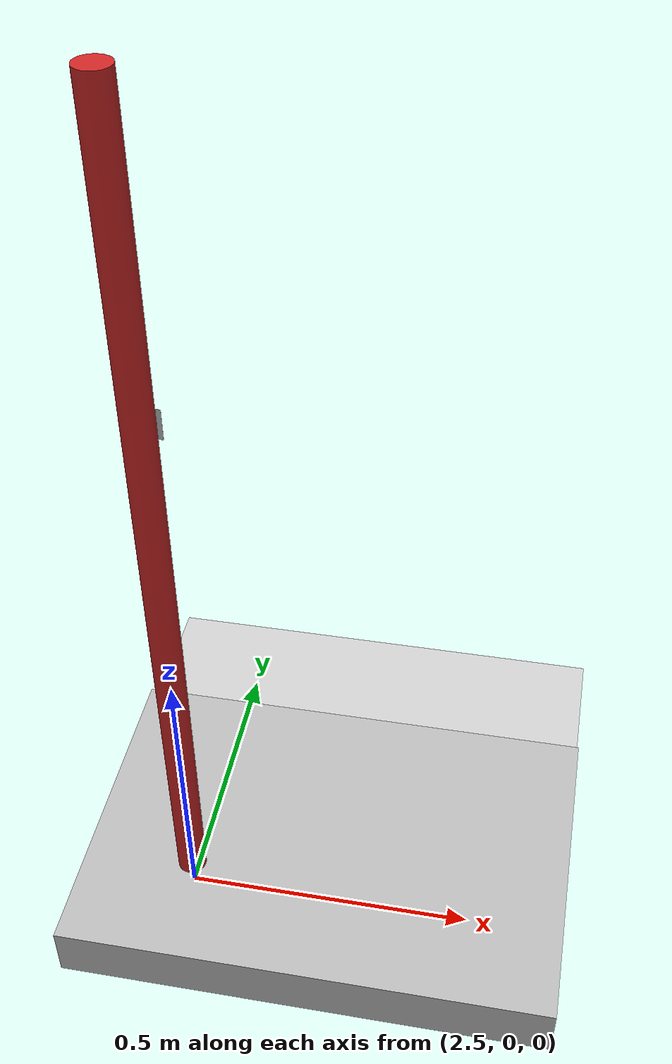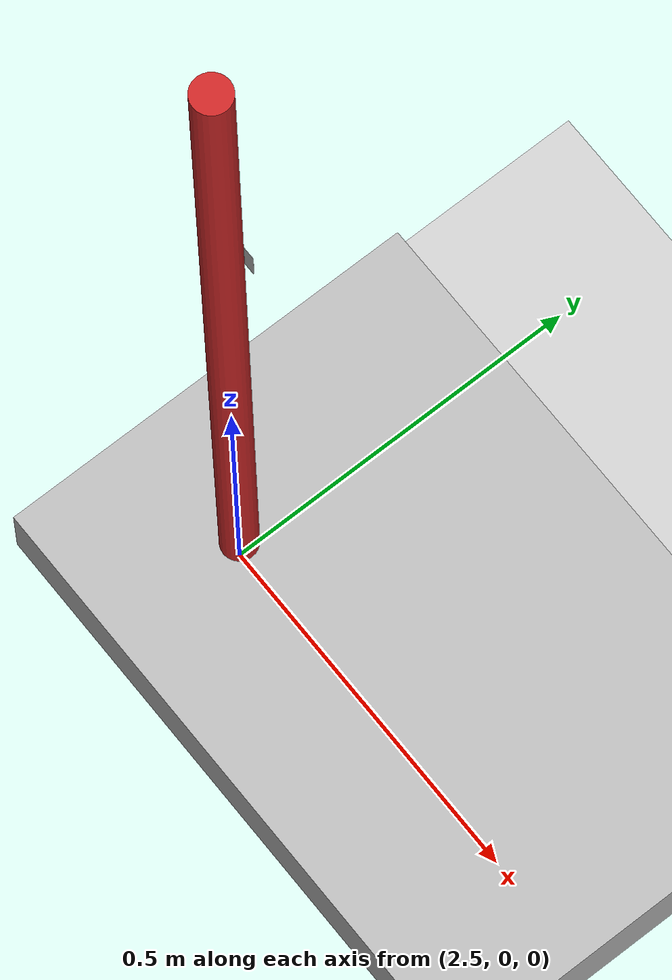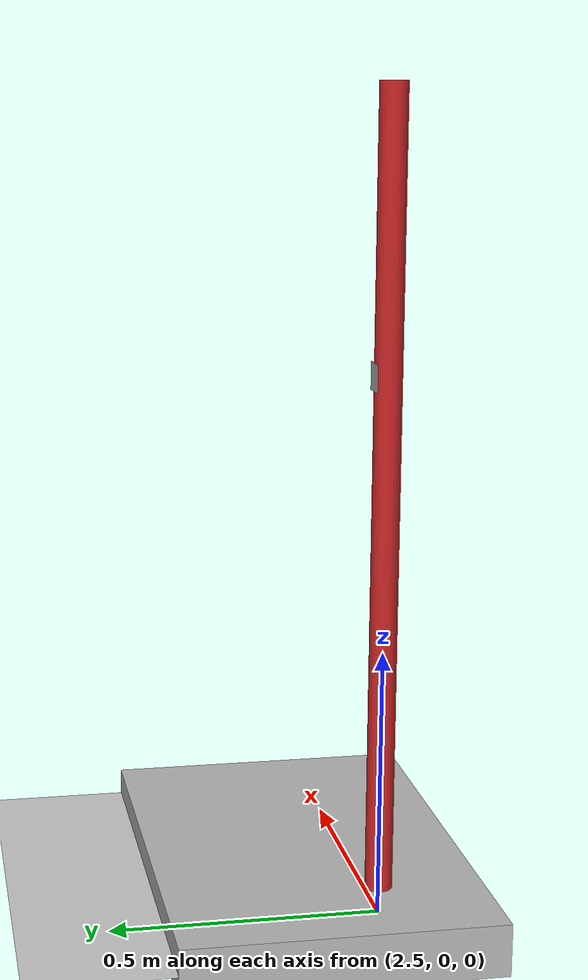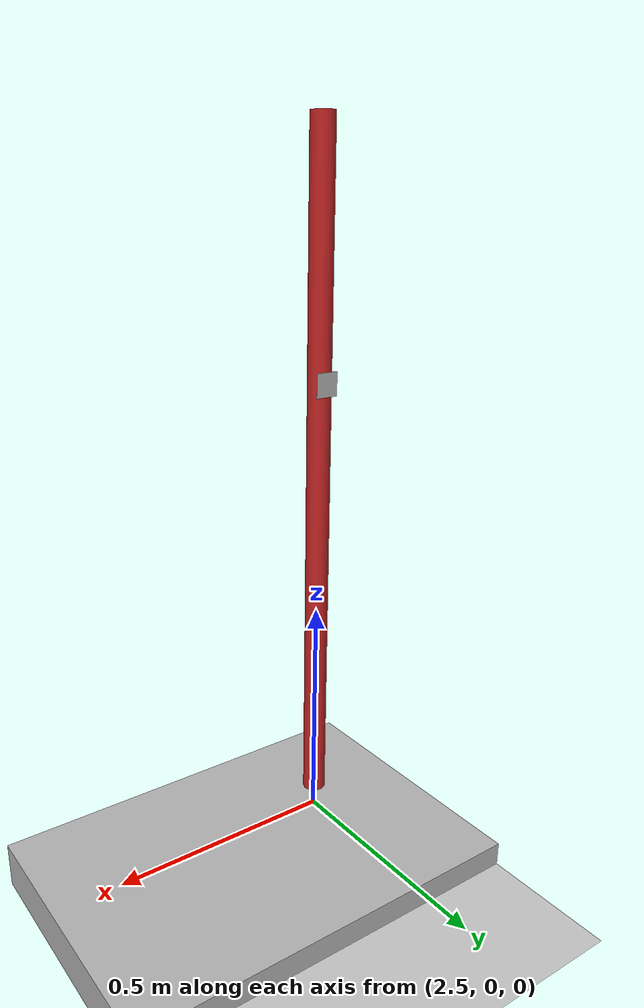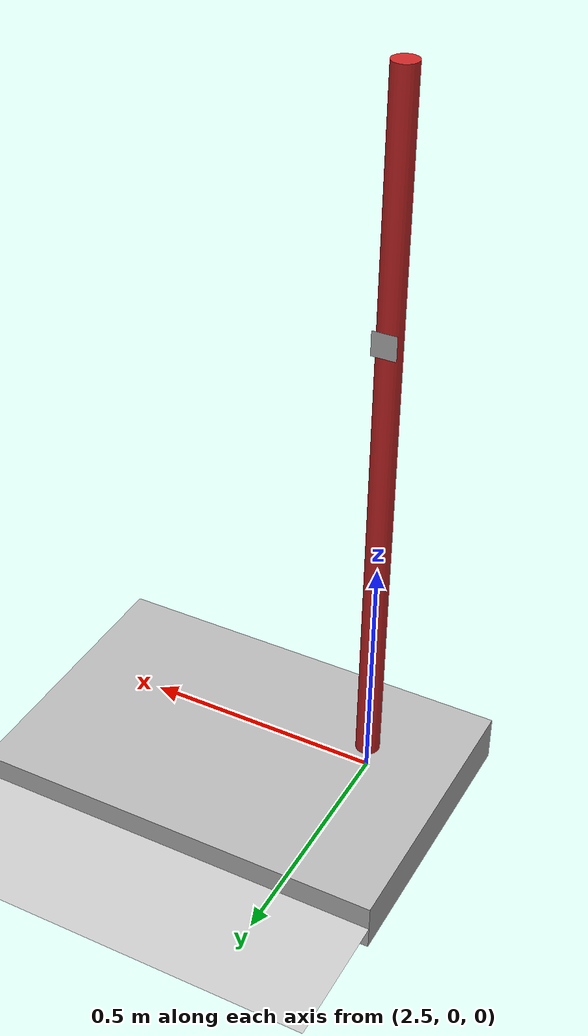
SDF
<?xml version="1.0" ?>
<sdf version="1.5">
  <world name="default">
    <!-- A global light source -->
    <include>
      <uri>model://sun</uri>
    </include>

    <!-- Additional light source -->

    <light name="extra_light" type="directional">
      <cast_shadows>1</cast_shadows>
      <pose>0 0 10 0 -0 0</pose>
      <diffuse>0.5 0.5 0.5 0.5</diffuse>
      <specular>0.1 0.1 0.1 1</specular>
      <direction>-0.5 0.5 -1</direction>
    </light>

    <!-- A point light source -->

    <light name="point_light" type="point">
      <pose>0 0 5 0 0 0</pose>
      <diffuse>1 1 1 1</diffuse>
      <specular>0.1 0.1 0.1 1</specular>
      <attenuation>
        <range>10</range>
        <constant>0.5</constant>
        <linear>0.01</linear>
        <quadratic>0.001</quadratic>
      </attenuation>
    </light>

  <scene>
    <grid>true</grid>
  </scene>

    <!-- A ground plane -->
    <include>
      <uri>model://ground_plane</uri>
    </include>
    <include>
      <uri>model://first_ground</uri>
    </include>

    <!-- First pole -->
    <include>
      <uri>model://pole</uri>
      <name>pole1</name>
      <pose>2.5 0 0.75 0 0 0</pose>
    </include>

    <!-- Second pole -->

    <!-- Rope -->

    <physics name='default_physics' default='0' type='ode'>
      <gravity>0 0 -9.8066</gravity>
      <ode>
        <solver>
          <type>quick</type>
          <iters>10</iters>
          <sor>1.3</sor>
          <use_dynamic_moi_rescaling>0</use_dynamic_moi_rescaling>
        </solver>
        <constraints>
          <cfm>0</cfm>
          <erp>0.2</erp>
          <contact_max_correcting_vel>100</contact_max_correcting_vel>
          <contact_surface_layer>0.001</contact_surface_layer>
        </constraints>
      </ode>
      <max_step_size>0.004</max_step_size>
      <real_time_factor>1</real_time_factor>
      <real_time_update_rate>250</real_time_update_rate>
      <magnetic_field>6.0e-6 2.3e-5 -4.2e-5</magnetic_field>
    </physics>
  </world>
</sdf>

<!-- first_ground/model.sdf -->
<sdf version="1.5">
  <model name="first_ground">
    <static>true</static>
    <link name="link">
      <collision name="collision">
        <geometry>
          <box>
            <size>4 4.8 .1</size>
          </box>
        </geometry>
      </collision>
      <visual name="visual">
        <pose>1.6 -2 0 0 0 0</pose>
        <cast_shadows>false</cast_shadows>
        <geometry>
          <box>
            <size>4 4.8 .1</size>
          </box>
        </geometry>
        <material>
          <script>
            <uri>model://first_ground/materials/scripts</uri>
            <uri>model://first_ground/materials/textures</uri>
            <name>my/first_ground</name>
          </script>
          <!-- 设置纹理不重复 -->
          <texture>
            <repeat>1 1</repeat> <!-- 将纹理重复设置为1x1，即不重复 -->
          </texture>
        </material>
      </visual>
    </link>
  </model>
</sdf>

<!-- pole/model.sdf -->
<sdf version="1.5">
  <model name="pole">
    <static>true</static>
    <link name="link">
      <!-- Main pole body -->
      <visual name="pole_visual">
        <geometry>
          <cylinder>
            <radius>0.025</radius>
            <length>1.5</length>
          </cylinder>
        </geometry>
        <material>
          <script>
            <uri>file://media/materials/scripts/gazebo.material</uri>
            <name>Gazebo/Red</name>
          </script>
        </material>
      </visual>
      <!-- Marker at 1m height -->
      <visual name="marker_visual">
        <pose>0 0.025 0.25 0 0 0</pose>
        <geometry>
          <box>
            <size>0.05 0.0001 0.05</size>
          </box>
        </geometry>
        <material>
          <script>
            <uri>model://pole/materials/scripts/pole_marker.material</uri>
            <name>PoleMarker</name>
          </script>
        </material>
      </visual>
      <collision name="collision">
        <geometry>
          <cylinder>
            <radius>0.025</radius>
            <length>2</length>
          </cylinder>
        </geometry>
      </collision>
    </link>
  </model>
</sdf>
